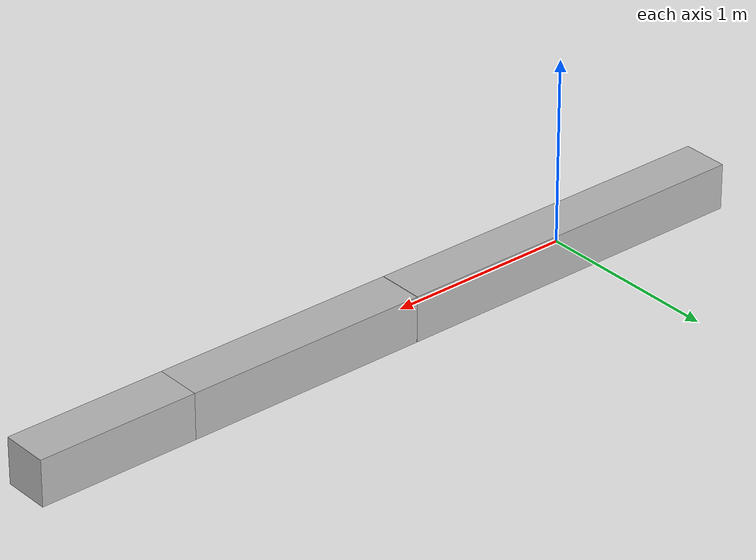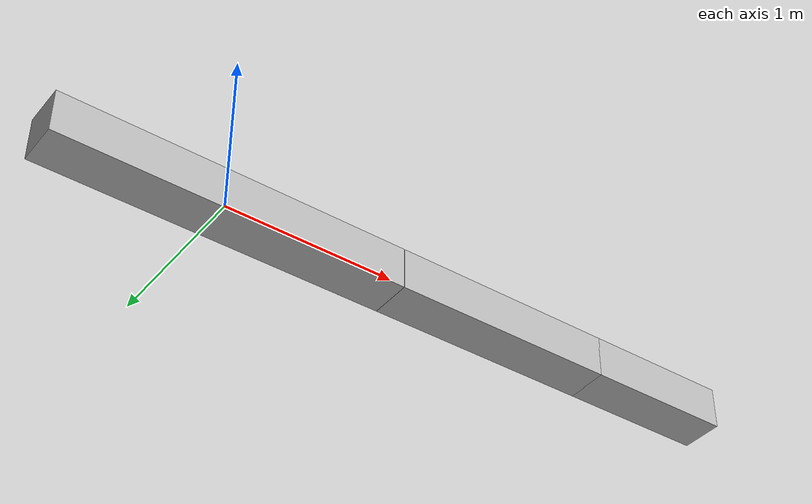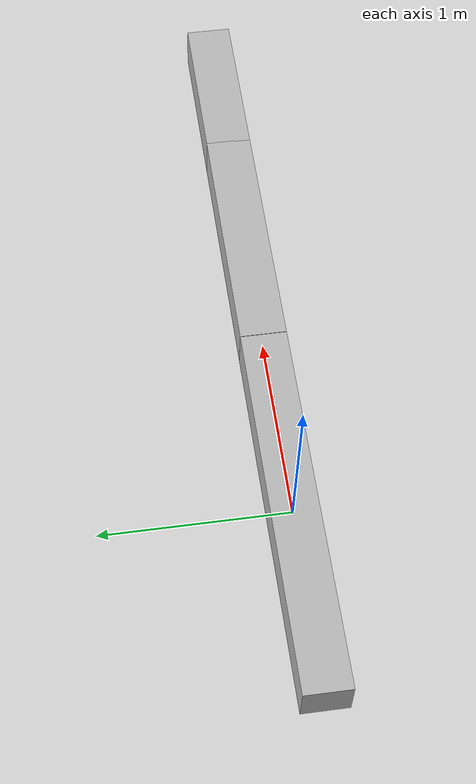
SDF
<?xml version="1.0" ?>
<sdf version="1.5">
  <model name="planar_robot">
    <link name="link_1">
      <pose>0 0 0 0 0 0</pose>
      <inertial>
        <mass>1.0</mass>
        <inertia>
          <ixx>0.010417</ixx>
          <iyy>0.33854</iyy>
          <izz>0.33854</izz>
          <ixy>0</ixy>
          <ixz>0</ixz>
          <iyz>0</iyz>
        </inertia>
      </inertial>
      <visual name="link_1-visual">
        <pose>0 0 0.0 0 0 0</pose>
        <geometry>
          <box>
            <size>2 .25 .25</size>
          </box>
        </geometry>
      </visual>
    </link>
    <link name="link_2">
      <pose>1.667 0 0 0 0 0</pose>
      <inertial>
        <mass>0.667</mass>
        <inertia>
          <ixx>0.0069581</ixx>
          <iyy>0.10099</iyy>
          <izz>0.10099</izz>
          <ixy>0</ixy>
          <ixz>0</ixz>
          <iyz>0</iyz>
        </inertia>
      </inertial>
      <visual name="link_2-visual">
        <pose>0 0 0.0 0 0 0</pose>
        <geometry>
          <box>
            <size>1.33 .25 .25</size>
          </box>
        </geometry>
      </visual>
    </link>
    <link name="link_3">
      <pose>2.7625 0 0 0 0 0</pose>
      <inertial>
        <mass>0.44444</mass>
        <inertia>
          <ixx>0.0046298</ixx>
          <iyy>0.013457</iyy>
          <izz>0.013457</izz>
          <ixy>0</ixy>
          <ixz>0</ixz>
          <iyz>0</iyz>
        </inertia>
      </inertial>
      <visual name="link_2-visual">
        <pose>0 0 0.0 0 0 0</pose>
        <geometry>
          <box>
            <size>0.8712 .25 .25</size>
          </box>
        </geometry>
      </visual>
    </link>
    <joint type="revolute" name="joint_1">
      <pose>-1.0 0 0 0 0 0</pose>
      <child>link_1</child>
      <parent>world</parent>
      <axis>
        <xyz>0 0 1</xyz>
        <use_parent_model_frame>false</use_parent_model_frame>
      </axis>
    </joint>
    <joint type="revolute" name="joint_2">
      <pose>-.83335 0 0 0 0 0</pose>
      <child>link_2</child>
      <parent>link_1</parent>
      <axis>
        <xyz>0 0 1</xyz>
        <use_parent_model_frame>false</use_parent_model_frame>
      </axis>
    </joint>
    <joint type="revolute" name="joint_3">
      <pose>-.4356 0 0 0 0 0</pose>
      <child>link_3</child>
      <parent>link_2</parent>
      <axis>
        <xyz>0 0 1</xyz>
        <use_parent_model_frame>false</use_parent_model_frame>
      </axis>
    </joint>
  </model>
</sdf>
